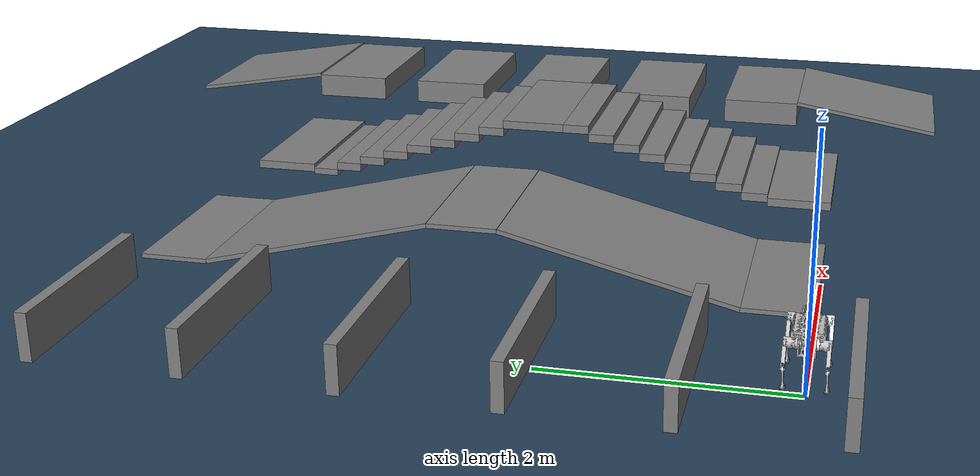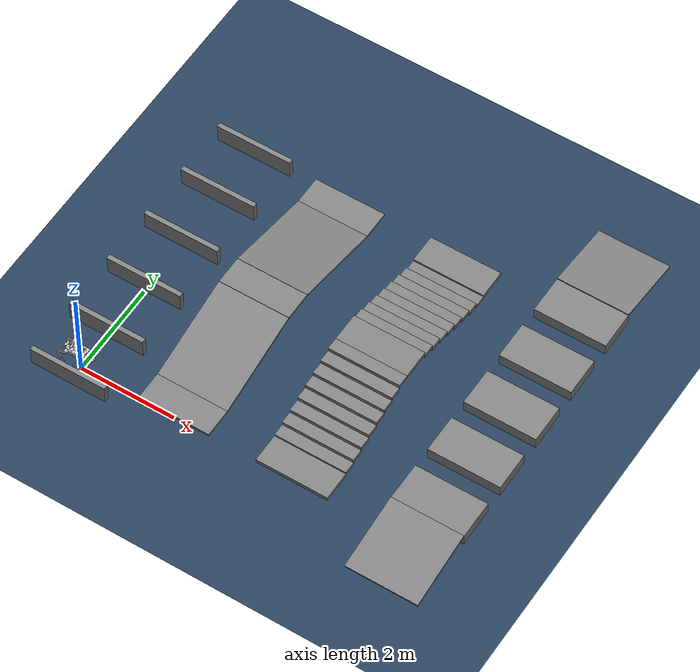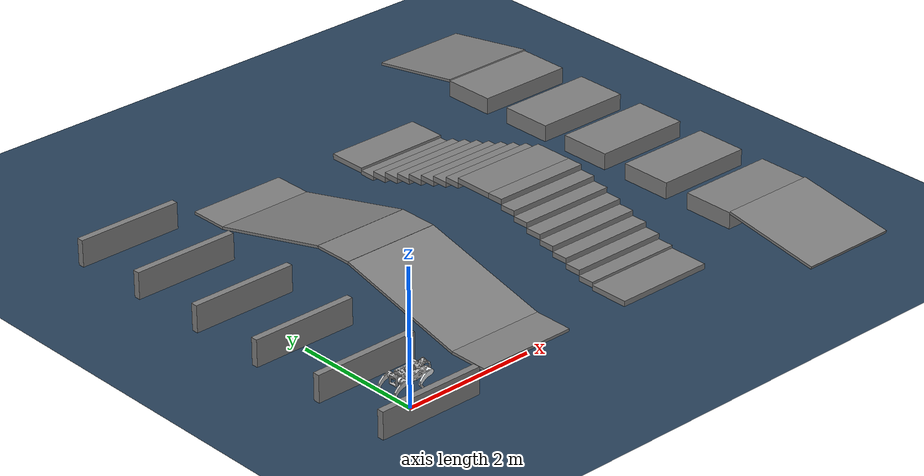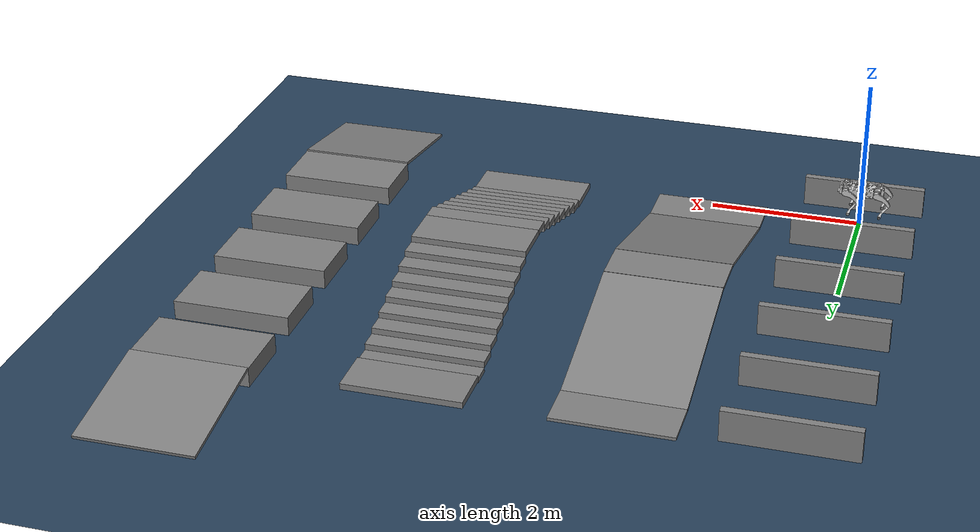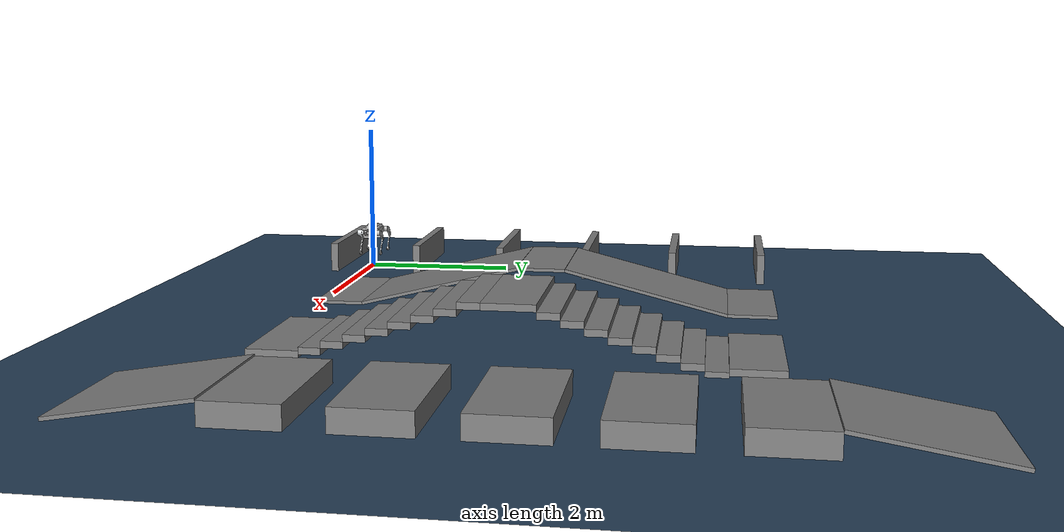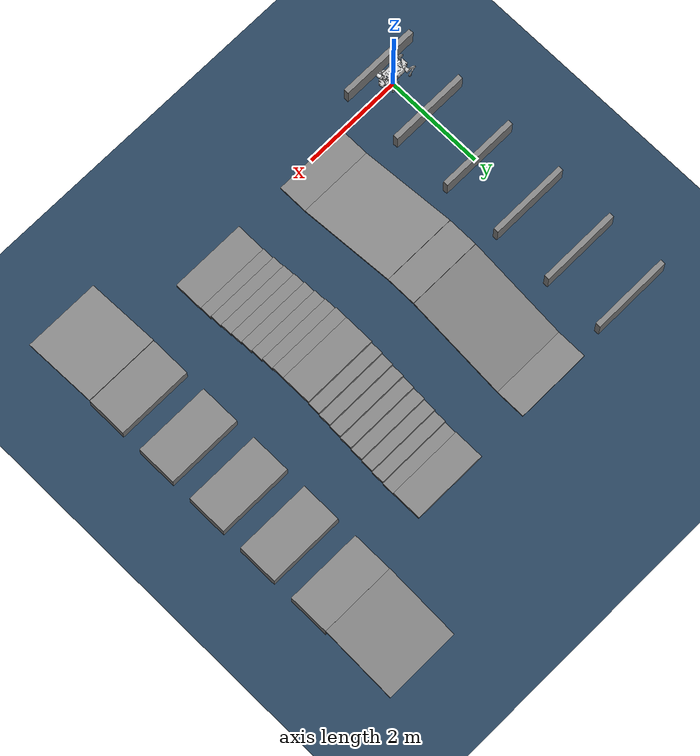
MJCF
<mujoco model="dog_v2_cross_stairs_1_4_7_10">
  <include file="dog_v2.xml"/>
  <statistic center="0 0 0.1" extent="0.8" />
  <visual>
    <headlight diffuse="0.6 0.6 0.6" ambient="0.3 0.3 0.3" specular="0 0 0" />
    <rgba haze="0.15 0.25 0.35 1" />
    <global azimuth="-130" elevation="-20" />
  </visual>
  <asset>
    <texture type="skybox" builtin="gradient" rgb1="0.3 0.5 0.7" rgb2="0 0 0" width="512" height="3072" />
    <texture type="2d" name="groundplane" builtin="checker" mark="edge" rgb1="0.2 0.3 0.4" rgb2="0.1 0.2 0.3" markrgb="0.8 0.8 0.8" width="300" height="300" />
    <material name="groundplane" texture="groundplane" texuniform="true" texrepeat="5 5" reflectance="0.0" />
  </asset>
  <default>
    <default class="obstacle_collision">
      <geom contype="1" conaffinity="1" condim="3" friction="1.0 0.2 0.2"/>
    </default>
  </default>
  <worldbody>
    <light pos="0 0 1.5" dir="0 0 -1" directional="true" />
    <geom name="floor" size="0 0 0.05" type="plane" material="groundplane" condim="3" friction="1.0 0.2 0.2" conaffinity="1" />
    <geom class="obstacle_collision" pos="0.0 -0.34999999999999964 0.25" type="box" size="0.8 0.05 0.2" quat="1.0 0.0 0.0 0.0"/>
    <geom class="obstacle_collision" pos="0.0 0.8500000000000003 0.25" type="box" size="0.8 0.05 0.2" quat="1.0 0.0 0.0 0.0"/>
    <geom class="obstacle_collision" pos="0.0 2.0500000000000003 0.25" type="box" size="0.8 0.05 0.2" quat="1.0 0.0 0.0 0.0"/>
    <geom class="obstacle_collision" pos="0.0 3.25 0.25" type="box" size="0.8 0.05 0.2" quat="1.0 0.0 0.0 0.0"/>
    <geom class="obstacle_collision" pos="0.0 4.45 0.25" type="box" size="0.8 0.05 0.2" quat="1.0 0.0 0.0 0.0"/>
    <geom class="obstacle_collision" pos="0.0 5.65 0.25" type="box" size="0.8 0.05 0.2" quat="1.0 0.0 0.0 0.0"/>
    <geom class="obstacle_collision" pos="2.0 0.3 0.05" type="box" size="0.75 0.3 0.02" quat="1.0 0.0 0.0 0.0"/>
    <geom class="obstacle_collision" pos="2.0 1.6 0.3" type="box" size="0.75 1.0307764064044151 0.02" quat="0.992507556682903 0.12218326369570447 0.0 0.0"/>
    <geom class="obstacle_collision" pos="2.0 2.9 0.55" type="box" size="0.75 0.3 0.02" quat="1.0 0.0 0.0 0.0"/>
    <geom class="obstacle_collision" pos="2.0 4.2 0.3" type="box" size="0.75 1.0307764064044151 0.02" quat="0.992507556682903 -0.12218326369570447 0.0 0.0"/>
    <geom class="obstacle_collision" pos="2.0 5.5 0.05" type="box" size="0.75 0.3 0.02" quat="1.0 0.0 0.0 0.0"/>
    <geom class="obstacle_collision" pos="4.5 0.3 0.05" type="box" size="0.75 0.3 0.04" quat="1.0 0.0 0.0 0.0"/>
    <geom class="obstacle_collision" pos="4.5 0.725 0.09" type="box" size="0.75 0.125 0.04" quat="1.0 0.0 0.0 0.0"/>
    <geom class="obstacle_collision" pos="4.5 0.975 0.16999999999999998" type="box" size="0.75 0.125 0.04" quat="1.0 0.0 0.0 0.0"/>
    <geom class="obstacle_collision" pos="4.5 1.225 0.25" type="box" size="0.75 0.125 0.04" quat="1.0 0.0 0.0 0.0"/>
    <geom class="obstacle_collision" pos="4.5 1.475 0.33" type="box" size="0.75 0.125 0.04" quat="1.0 0.0 0.0 0.0"/>
    <geom class="obstacle_collision" pos="4.5 1.725 0.41" type="box" size="0.75 0.125 0.04" quat="1.0 0.0 0.0 0.0"/>
    <geom class="obstacle_collision" pos="4.5 1.975 0.49" type="box" size="0.75 0.125 0.04" quat="1.0 0.0 0.0 0.0"/>
    <geom class="obstacle_collision" pos="4.5 2.225 0.5700000000000001" type="box" size="0.75 0.125 0.04" quat="1.0 0.0 0.0 0.0"/>
    <geom class="obstacle_collision" pos="4.5 2.475 0.65" type="box" size="0.75 0.125 0.04" quat="1.0 0.0 0.0 0.0"/>
    <geom class="obstacle_collision" pos="4.5 2.9 0.65" type="box" size="0.75 0.3 0.04" quat="1.0 0.0 0.0 0.0"/>
    <geom class="obstacle_collision" pos="4.5 3.325 0.5700000000000001" type="box" size="0.75 0.125 0.04" quat="1.0 0.0 0.0 0.0"/>
    <geom class="obstacle_collision" pos="4.5 3.575 0.49000000000000005" type="box" size="0.75 0.125 0.04" quat="1.0 0.0 0.0 0.0"/>
    <geom class="obstacle_collision" pos="4.5 3.825 0.41000000000000003" type="box" size="0.75 0.125 0.04" quat="1.0 0.0 0.0 0.0"/>
    <geom class="obstacle_collision" pos="4.5 4.075 0.33000000000000007" type="box" size="0.75 0.125 0.04" quat="1.0 0.0 0.0 0.0"/>
    <geom class="obstacle_collision" pos="4.5 4.325 0.25000000000000006" type="box" size="0.75 0.125 0.04" quat="1.0 0.0 0.0 0.0"/>
    <geom class="obstacle_collision" pos="4.5 4.575 0.17000000000000004" type="box" size="0.75 0.125 0.04" quat="1.0 0.0 0.0 0.0"/>
    <geom class="obstacle_collision" pos="4.5 4.825 0.09000000000000008" type="box" size="0.75 0.125 0.04" quat="1.0 0.0 0.0 0.0"/>
    <geom class="obstacle_collision" pos="4.5 5.075 0.010000000000000009" type="box" size="0.75 0.125 0.04" quat="1.0 0.0 0.0 0.0"/>
    <geom class="obstacle_collision" pos="4.5 5.5 0.05" type="box" size="0.75 0.3 0.04" quat="1.0 0.0 0.0 0.0"/>
    <geom class="obstacle_collision" pos="7.0 -0.25 0.175" type="box" size="0.75 0.7603453162872774 0.02" quat="0.9965926760297167 0.08248053154489327 0.0 0.0"/>
    <geom class="obstacle_collision" pos="7.0 0.9 0.175" type="box" size="0.75 0.4 0.125" quat="1.0 0.0 0.0 0.0"/>
    <geom class="obstacle_collision" pos="7.0 2.1 0.175" type="box" size="0.75 0.4 0.125" quat="1.0 0.0 0.0 0.0"/>
    <geom class="obstacle_collision" pos="7.0 3.3000000000000003 0.175" type="box" size="0.75 0.4 0.125" quat="1.0 0.0 0.0 0.0"/>
    <geom class="obstacle_collision" pos="7.0 4.500000000000001 0.175" type="box" size="0.75 0.4 0.125" quat="1.0 0.0 0.0 0.0"/>
    <geom class="obstacle_collision" pos="7.0 5.700000000000001 0.175" type="box" size="0.75 0.4 0.125" quat="1.0 0.0 0.0 0.0"/>
    <geom class="obstacle_collision" pos="7.0 6.8500000000000005 0.175" type="box" size="0.75 0.7603453162872774 0.02" quat="0.9965926760297167 -0.08248053154489327 0.0 0.0"/>
  </worldbody>
</mujoco>

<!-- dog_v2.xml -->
<mujoco model="dog_v2">
  <compiler angle="radian" autolimits="true" eulerseq="zyx" meshdir="meshes" />
  <option gravity='0 0 -9.81'>
    <flag frictionloss="enable"/>
  </option>
  <size njmax="500" nconmax="100" />

  <default>
    <joint limited="true" />
    <motor ctrllimited="true" />
    <geom condim="1" contype="1" conaffinity="0" friction="0.6 0.2 0.2" />
    <default class="leg_joint_param">
      <joint damping="0.5" frictionloss="0.01" armature="0.01" />
    </default>
    <default class="foot_collision">
      <geom type="sphere" size="0.02" condim="6" friction="10.0 0.05 0.01"/>
    </default>
  </default>

  <asset>
    <mesh name="base_link" file="base_link.STL" />
    <mesh name="LF_HipA_link" file="LF_HipA_link.STL" />
    <mesh name="LF_HipF_link" file="LF_HipF_link.STL" />
    <mesh name="LF_Knee_link" file="LF_Knee_link.STL" />
    <mesh name="LF_Foot_link" file="LF_Foot_link.STL" />
    <mesh name="RF_HipA_link" file="RF_HipA_link.STL" />
    <mesh name="RF_HipF_link" file="RF_HipF_link.STL" />
    <mesh name="RF_Knee_link" file="RF_Knee_link.STL" />
    <mesh name="RF_Foot_link" file="RF_Foot_link.STL" />
    <mesh name="LR_HipA_link" file="LR_HipA_link.STL" />
    <mesh name="LR_HipF_link" file="LR_HipF_link.STL" />
    <mesh name="LR_Knee_link" file="LR_Knee_link.STL" />
    <mesh name="LR_Foot_link" file="LR_Foot_link.STL" />
    <mesh name="RR_HipA_link" file="RR_HipA_link.STL" />
    <mesh name="RR_HipF_link" file="RR_HipF_link.STL" />
    <mesh name="RR_Knee_link" file="RR_Knee_link.STL" />
    <mesh name="RR_Foot_link" file="RR_Foot_link.STL" />
  </asset>

  <worldbody>
    <light directional="true" diffuse=".4 .4 .4" pos="0 0 5.0" dir="0 0 -1"/>

    <body name="base" pos="0 0 0.45">
      <freejoint name="floating_base" />
      <inertial pos="0.003073 -1.1e-05 0.058211" mass="5.276437" fullinertia="0.032842099924 0.103762167556 0.116538404566 3.336928e-05 -0.007254554244 3.335365e-05" />
      <site name="imu" size="0.01" pos="0 0 0" />
      <geom name="base" type="mesh" mesh="base_link" rgba="0.75294 0.75294 0.75294 1" group="1" />

      <body name="FL_hip" pos="0.16 0.0674994572689366 0.0630000490222146" quat="0.499999999999998 0.5 0.500000000000002 0.5">
        <inertial pos="0.002621 5.2e-05 0.046852" mass="0.452382" fullinertia="0.00055866874 0.000347032635 0.000308951038 3.41744e-07 -7.08495e-07 -9.1476e-08" />
        <joint name="FL_hip_joint" axis="0 0 1" range="-0.7853982 0.7853982" class="leg_joint_param" />
        <geom name="FL_hip" type="mesh" mesh="LF_HipA_link" rgba="0.752941176470588 0.752941176470588 0.752941176470588 1" group="1" />
        <body name="FL_thigh" pos="0.018001 0 0.048001" quat="0.707105482511236 0 0.707108079859474 0">
          <inertial pos="0.033261 -0.016881 0.050217" mass="0.779164" fullinertia="0.001597433226 0.003268376129 0.004330433943 0.001505087455 -0.000442930553 0.000224661879" />
          <joint name="FL_thigh_joint" axis="0 0 1" range="-1.2217658 1.2217658" class="leg_joint_param" />
          <geom name="FL_thigh" type="mesh" mesh="LF_HipF_link" rgba="0.752941176470588 0.752941176470588 0.752941176470588 1" group="1" />
          <body name="FL_calf" pos="0.170743431939306 -0.122257424197791 0.0500000000000068">
            <inertial pos="-0.055107 -0.080197 0.016515" mass="0.121558" fullinertia="0.000549292448 0.000223695708 0.000769619177 -0.000333360171 -1.07893e-07 -1.88213e-07" />
            <joint name="FL_calf_joint" axis="0 0 1" range="-1.2217299 0.69813" class="leg_joint_param" />
            <geom name="FL_calf" type="mesh" mesh="LF_Knee_link" rgba="1 1 1 1" group="1" />
            <site name="FL_foot_site" pos="-0.110125305788291 -0.190742624824423 0.0165" size="0.01" />
            <geom name="FL_foot_visual" type="mesh" mesh="LF_Foot_link" pos="-0.110125305788291 -0.190742624824423 0.0165" quat="0 0 0.707 0.707" contype="0" conaffinity="0" group="1" />
            <geom name="FL_foot_collision" class="foot_collision" pos="-0.110125305788291 -0.190742624824423 0.0165" rgba="0 0 0 0" />
          </body>
        </body>
      </body>

      <body name="FR_hip" pos="0.16 -0.0674994572689349 0.0629999509777826" quat="0.499999999999998 0.5 0.500000000000002 0.5">
        <inertial pos="-0.002621 -5.2e-05 0.046852" mass="0.452382" fullinertia="0.00055866874 0.000347032635 0.000308951038 3.41744e-07 7.08495e-07 9.1476e-08" />
        <joint name="FR_hip_joint" axis="0 0 1" range="-0.7853982 0.7853982" class="leg_joint_param" />
        <geom name="FR_hip" type="mesh" mesh="RF_HipA_link" rgba="0.752941176470588 0.752941176470588 0.752941176470588 1" group="1" />
        <body name="FR_thigh" pos="-0.018001 0 0.048001" quat="0.707105482511236 0 -0.707108079859474 0">
          <inertial pos="-0.033247 -0.016939 0.050217" mass="0.779164" fullinertia="0.001595827327 0.00326915934 0.004329611254 -0.001503634909 0.000443182676 0.000223603548" />
          <joint name="FR_thigh_joint" axis="0 0 1" range="-1.2217342 1.2217342" class="leg_joint_param" />
          <geom name="FR_thigh" type="mesh" mesh="RF_HipF_link" rgba="0.898039215686275 0.917647058823529 0.929411764705882 1" group="1" />
          <body name="FR_calf" pos="-0.17074 -0.12226 0.05">
            <inertial pos="0.055107 -0.080197 0.016485" mass="0.121558" fullinertia="0.000549292448 0.000223695708 0.000769619177 0.000333360171 -1.07893e-07 1.88213e-07" />
            <joint name="FR_calf_joint" axis="0 0 1" range="-0.6981312 1.2217287" class="leg_joint_param" />
            <geom name="FR_calf" type="mesh" mesh="RF_Knee_link" rgba="1 1 1 1" group="1" />
            <site name="FR_foot_site" pos="0.110125305788291 -0.190742624824423 0.0165" size="0.01" />
            <geom name="FR_foot_visual" type="mesh" mesh="RF_Foot_link" pos="0.110125305788291 -0.190742624824423 0.0165" quat="0.707 -0.707 0 0" contype="0" conaffinity="0" group="1" />
            <geom name="FR_foot_collision" class="foot_collision" pos="0.110125305788291 -0.190742624824423 0.0165" rgba="0 0 0 0" />
          </body>
        </body>
      </body>

      <body name="RL_hip" pos="-0.16 0.0674994572689466 0.0629999509777641" quat="0.499999999999998 0.5 -0.500000000000002 -0.5">
        <inertial pos="-0.002621 -5.2e-05 0.046852" mass="0.452382" fullinertia="0.00055866874 0.000347032635 0.000308951038 3.41744e-07 7.08495e-07 9.1476e-08" />
        <joint name="RL_hip_joint" axis="0 0 1" range="-0.7853982 0.7853982" class="leg_joint_param" />
        <geom name="RL_hip" type="mesh" mesh="LR_HipA_link" rgba="0.752941176470588 0.752941176470588 0.752941176470588 1" group="1" />
        <body name="RL_thigh" pos="-0.018001 0 0.048001" quat="0.707105482511236 0 -0.707108079859474 0">
          <inertial pos="0.03326 -0.016881 0.050217" mass="0.779164" fullinertia="0.001597433226 0.003268376129 0.004330433943 0.001505087455 -0.000442930553 0.000224661879" />
          <joint name="RL_thigh_joint" axis="0 0 1" range="-1.2217305 1.2217305" class="leg_joint_param" />
          <geom name="RL_thigh" type="mesh" mesh="LR_HipF_link" rgba="0.752941176470588 0.752941176470588 0.752941176470588 1" group="1" />
          <body name="RL_calf" pos="0.17074234647718 -0.122257326153361 0.050000000000001">
            <inertial pos="-0.055107 -0.080197 0.016515" mass="0.121558" fullinertia="0.000549292448 0.000223695708 0.000769619177 -0.000333360171 -1.07893e-07 -1.88213e-07" />
            <joint name="RL_calf_joint" axis="0 0 1" range="-1.2217299 0.69813" class="leg_joint_param" />
            <geom name="RL_calf" type="mesh" mesh="LR_Knee_link" rgba="1 1 1 1" group="1" />
            <site name="RL_foot_site" pos="-0.110125305788291 -0.190742624824423 0.0165" size="0.01" />
            <geom name="RL_foot_visual" type="mesh" mesh="LR_Foot_link" pos="-0.110125305788291 -0.190742624824423 0.0165" quat="0 0 -0.707 -0.707" contype="0" conaffinity="0" group="1" />
            <geom name="RL_foot_collision" class="foot_collision" pos="-0.110125305788291 -0.190742624824423 0.0165" rgba="0 0 0 0" />
          </body>
        </body>
      </body>

      <body name="RR_hip" pos="-0.16 -0.0674994572689364 0.0630000490222165" quat="0.499999999999998 0.5 -0.500000000000002 -0.5">
        <inertial pos="0.002621 5.2e-05 0.046852" mass="0.452382" fullinertia="0.00055866874 0.000347032635 0.000308951038 3.41744e-07 -7.08495e-07 -9.1476e-08" />
        <joint name="RR_hip_joint" axis="0 0 1" range="-0.7853982 0.7853982" class="leg_joint_param" />
        <geom name="RR_hip" type="mesh" mesh="RR_HipA_link" rgba="1 1 1 1" group="1" />
        <body name="RR_thigh" pos="0.018001 0 0.048001" quat="0.707105482511236 0 0.707108079859474 0">
          <inertial pos="-0.033246 -0.01694 0.050217" mass="0.779164" fullinertia="0.001595827327 0.00326915934 0.004329611254 -0.001503634909 0.000443182676 0.000223603548" />
          <joint name="RR_thigh_joint" axis="0 0 1" range="-1.2217305 1.2217305" class="leg_joint_param" />
          <geom name="RR_thigh" type="mesh" mesh="RR_HipF_link" rgba="0.752941176470588 0.752941176470588 0.752941176470588 1" group="1" />
          <body name="RR_calf" pos="-0.170742346477182 -0.122257424197793 0.050000000000007">
            <inertial pos="0.055107 -0.080197 0.016485" mass="0.121558" fullinertia="0.000549292448 0.000223695708 0.000769619177 0.000333360171 -1.07893e-07 1.88213e-07" />
            <joint name="RR_calf_joint" axis="0 0 1" range="-0.6981312 1.2217287" class="leg_joint_param" />
            <geom name="RR_calf" type="mesh" mesh="RR_Knee_link" rgba="1 1 1 1" group="1" />
            <site name="RR_foot_site" pos="0.11013 -0.19074 0.0165" size="0.01" />
            <geom name="RR_foot_visual" type="mesh" mesh="RR_Foot_link" pos="0.11013 -0.19074 0.0165" quat="0.707 -0.707 0 0" contype="0" conaffinity="0" group="1" />
            <geom name="RR_foot_collision" class="foot_collision" pos="0.11013 -0.19074 0.0165" rgba="0 0 0 0" />
          </body>
        </body>
      </body>
    </body>
  </worldbody>

  <actuator>
    <motor name="FL_hip" joint="FL_hip_joint" gear="1" ctrllimited="true" ctrlrange="-17 17" />
    <motor name="FL_thigh" joint="FL_thigh_joint" gear="1" ctrllimited="true" ctrlrange="-17 17" />
    <motor name="FL_calf" joint="FL_calf_joint" gear="1" ctrllimited="true" ctrlrange="-25 25" />
    <motor name="FR_hip" joint="FR_hip_joint" gear="1" ctrllimited="true" ctrlrange="-17 17" />
    <motor name="FR_thigh" joint="FR_thigh_joint" gear="1" ctrllimited="true" ctrlrange="-17 17" />
    <motor name="FR_calf" joint="FR_calf_joint" gear="1" ctrllimited="true" ctrlrange="-25 25" />
    <motor name="RL_hip" joint="RL_hip_joint" gear="1" ctrllimited="true" ctrlrange="-17 17" />
    <motor name="RL_thigh" joint="RL_thigh_joint" gear="1" ctrllimited="true" ctrlrange="-17 17" />
    <motor name="RL_calf" joint="RL_calf_joint" gear="1" ctrllimited="true" ctrlrange="-25 25" />
    <motor name="RR_hip" joint="RR_hip_joint" gear="1" ctrllimited="true" ctrlrange="-17 17" />
    <motor name="RR_thigh" joint="RR_thigh_joint" gear="1" ctrllimited="true" ctrlrange="-17 17" />
    <motor name="RR_calf" joint="RR_calf_joint" gear="1" ctrllimited="true" ctrlrange="-25 25" />
  </actuator>

  <sensor>
    <jointpos name="FL_hip_pos" joint="FL_hip_joint"/>
    <jointpos name="FL_thigh_pos" joint="FL_thigh_joint"/>
    <jointpos name="FL_calf_pos" joint="FL_calf_joint"/>
    <jointpos name="FR_hip_pos" joint="FR_hip_joint"/>
    <jointpos name="FR_thigh_pos" joint="FR_thigh_joint"/>
    <jointpos name="FR_calf_pos" joint="FR_calf_joint"/>
    <jointpos name="RL_hip_pos" joint="RL_hip_joint"/>
    <jointpos name="RL_thigh_pos" joint="RL_thigh_joint"/>
    <jointpos name="RL_calf_pos" joint="RL_calf_joint"/>
    <jointpos name="RR_hip_pos" joint="RR_hip_joint"/>
    <jointpos name="RR_thigh_pos" joint="RR_thigh_joint"/>
    <jointpos name="RR_calf_pos" joint="RR_calf_joint"/>

    <jointvel name="FL_hip_vel" joint="FL_hip_joint"/>
    <jointvel name="FL_thigh_vel" joint="FL_thigh_joint"/>
    <jointvel name="FL_calf_vel" joint="FL_calf_joint"/>
    <jointvel name="FR_hip_vel" joint="FR_hip_joint"/>
    <jointvel name="FR_thigh_vel" joint="FR_thigh_joint"/>
    <jointvel name="FR_calf_vel" joint="FR_calf_joint"/>
    <jointvel name="RL_hip_vel" joint="RL_hip_joint"/>
    <jointvel name="RL_thigh_vel" joint="RL_thigh_joint"/>
    <jointvel name="RL_calf_vel" joint="RL_calf_joint"/>
    <jointvel name="RR_hip_vel" joint="RR_hip_joint"/>
    <jointvel name="RR_thigh_vel" joint="RR_thigh_joint"/>
    <jointvel name="RR_calf_vel" joint="RR_calf_joint"/>

    <jointactuatorfrc name="FL_hip_torque" joint="FL_hip_joint"/>
    <jointactuatorfrc name="FL_thigh_torque" joint="FL_thigh_joint"/>
    <jointactuatorfrc name="FL_calf_torque" joint="FL_calf_joint"/>
    <jointactuatorfrc name="FR_hip_torque" joint="FR_hip_joint"/>
    <jointactuatorfrc name="FR_thigh_torque" joint="FR_thigh_joint"/>
    <jointactuatorfrc name="FR_calf_torque" joint="FR_calf_joint"/>
    <jointactuatorfrc name="RL_hip_torque" joint="RL_hip_joint"/>
    <jointactuatorfrc name="RL_thigh_torque" joint="RL_thigh_joint"/>
    <jointactuatorfrc name="RL_calf_torque" joint="RL_calf_joint"/>
    <jointactuatorfrc name="RR_hip_torque" joint="RR_hip_joint"/>
    <jointactuatorfrc name="RR_thigh_torque" joint="RR_thigh_joint"/>
    <jointactuatorfrc name="RR_calf_torque" joint="RR_calf_joint"/>

    <framequat name="orientation" objtype="site" objname="imu"/>
    <gyro name="angular-velocity" site="imu"/>
    <accelerometer name="linear-acceleration" site="imu"/>
    <framepos name="position" objtype="site" objname="imu"/>
  </sensor>
</mujoco>
